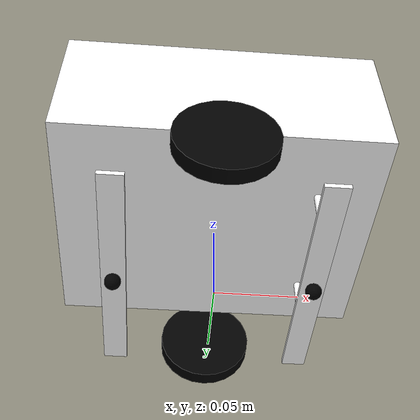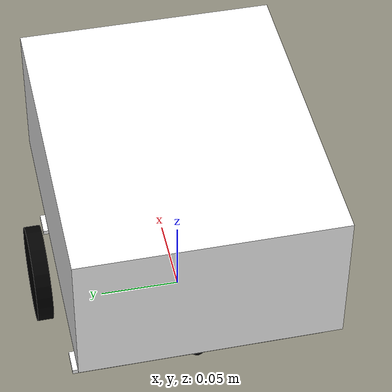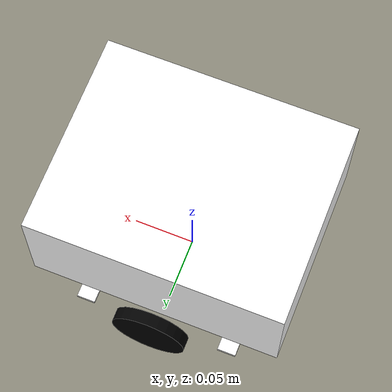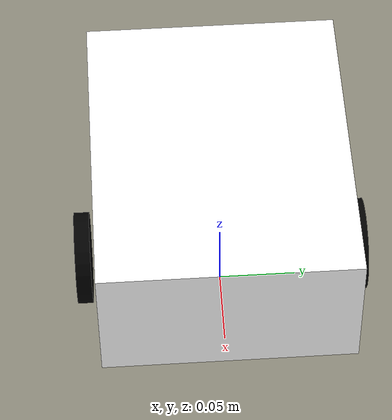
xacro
<?xml version="1.0"?>
<robot xmlns:xacro="http://www.ros.org/wiki/xacro"  name="robot">

    <xacro:include filename="inertial_macros.xacro"/>

    <material name="white">
        <color rgba="1 1 1 1" />
    </material>

    <material name="orange">
        <color rgba="1 0.3 0.1 1"/>
    </material>

    <material name="blue">
        <color rgba="0.2 0.2 1 1"/>
    </material>

    <material name="black">
        <color rgba="0 0 0 1"/>
    </material>

    <!-- base link -->

    <link name="base_link">

    </link>

    <!-- base footprint -->

    <joint name="base_footprint_joint" type="fixed">
        <parent link="base_link"/>
        <child link="base_footprint"/>
        <origin xyz="0 0 0" rpy="0 0 0"/>
    </joint>

    <link name="base_footprint">
    </link>

    <!-- chassis -->

    <joint name="chassis_joint" type="fixed">
        <parent link="base_link"/>
        <child link="chassis"/>
        <origin xyz="0 0 0" rpy="0 0 0"/>
    </joint>

    <link name="chassis">
        <visual>
        <origin xyz="0 0 0.095"/>
            <geometry>
                <box size="0.2 0.16 0.09"/>
            </geometry>
            <material name="white"/>
        </visual>
        <collision>
        <origin xyz="0.0 0.0 0.095"/>
            <geometry>
                <box size="0.2 0.16 0.09"/>
            </geometry>
            <material name="white"/>
        </collision>
        <xacro:inertial_box mass="0.7" x="0.2" y="0.16" z="0.09">
            <origin xyz="0 0 0.05" rpy="0 0 0"/>
        </xacro:inertial_box>
    </link>

    <!-- left wheel -->

    <joint name="left_wheel_joint" type="continuous">
        <parent link="base_link"/>
        <child link="left_wheel"/>
        <origin xyz="0 0.09 0.03" rpy="-${pi/2} 0 0"/>
        <axis xyz="0 0 1"/>
    </joint>

    <link name="left_wheel">
        <visual>
            <geometry>
                <cylinder radius="0.03" length="0.01"/>
            </geometry>
            <material name="black" />
        </visual>
        <collision>
            <geometry>
                <cylinder radius="0.03" length="0.01"/>
            </geometry>
            <material name="black" />
        </collision>
        <xacro:inertial_cylinder mass="0.2" length="0.01" radius="0.03">
            <origin xyz="0 0 0" rpy="0 0 0"/>
        </xacro:inertial_cylinder>
    </link>

    <!-- right wheel -->

    <joint name="right_wheel_joint" type="continuous">
        <parent link="base_link"/>
        <child link="right_wheel"/>
        <origin xyz="0 -0.09 0.03" rpy="${pi/2} 0 0"/>
        <axis xyz="0 0 -1"/>
    </joint>

    <link name="right_wheel">
        <visual>
            <geometry>
                <cylinder radius="0.03" length="0.01"/>
            </geometry>
            <material name="black" />
        </visual>
        <collision>
            <geometry>
                <cylinder radius="0.03" length="0.01"/>
            </geometry>
            <material name="black" />
        </collision>
        <xacro:inertial_cylinder mass="0.2" length="0.01" radius="0.03">
            <origin xyz="0 0 0" rpy="0 0 0"/>
        </xacro:inertial_cylinder>
    </link>

    <!-- front caster link -->

    <!-- front left screw -->
    <joint name="front_left_screw_joint" type="fixed">
        <parent link="base_link"/>
        <child link="front_left_screw"/>
        <origin xyz="0.06 0.04 0.0275" rpy="0 0 0"/>
    </joint>

    <link name="front_left_screw">
        <visual>
            <geometry>
                <cylinder radius="0.0025" length="0.035"/>
            </geometry>
            <material name="white"/>
        </visual>
        <collision>
            <geometry>
                <cylinder radius="0.0025" length="0.035"/>
            </geometry>
        </collision>
        <xacro:inertial_cylinder mass="0.05" length="0.035" radius="0.0025">
            <origin xyz="0 0 0" rpy="0 0 0"/>
        </xacro:inertial_cylinder>
    </link>

    <!-- front right screw -->
    <joint name="front_right_screw_joint" type="fixed">
        <parent link="base_link"/>
        <child link="front_right_screw"/>
        <origin xyz="0.06 -0.04 0.0275" rpy="0 0 0"/>
    </joint>

    <link name="front_right_screw">
        <visual>
            <geometry>
                <cylinder radius="0.0025" length="0.035"/>
            </geometry>
            <material name="white"/>
        </visual>
        <collision>
            <geometry>
                <cylinder radius="0.0025" length="0.035"/>
            </geometry>
        </collision>
        <xacro:inertial_cylinder mass="0.05" length="0.035" radius="0.0025">
            <origin xyz="0 0 0" rpy="0 0 0"/>
        </xacro:inertial_cylinder>
    </link>

    <!-- front caster link -->

    <joint name="front_caster_link_joint" type="fixed">
        <parent link="base_link"/>
        <child link="front_caster_link"/>
        <origin xyz="0.06 0 0.01"/>
    </joint>

    <link name="front_caster_link">
        <visual>
            <geometry>
                <box size="0.015 0.16 0.003"/>
            </geometry>
            <material name="white"/>
        </visual>
        <collision>
            <geometry>
                <box size="0.015 0.16 0.003"/>
            </geometry>
        </collision>
        <xacro:inertial_box mass="0.1" x="0.015" y="0.16" z="0.003">
            <origin xyz="0 0 0" rpy="0 0 0"/>
        </xacro:inertial_box>
    </link>

    <!-- front caster wheel -->
    <joint name="front_caster_joint" type="fixed">
        <parent link="chassis"/>
        <child link="front_caster_wheel"/>
        <origin xyz="0.06 0 0.005"/>
    </joint>

    <link name="front_caster_wheel">
        <visual>
            <geometry>
                <sphere radius="0.005"/>
            </geometry>
            <material name="black"/>
        </visual>
        <collision>
            <geometry>
                <sphere radius="0.005"/>
            </geometry>
        </collision>
        <xacro:inertial_sphere mass="0.01" radius="0.005">
            <origin xyz="0 0 0" rpy="0 0 0"/>
        </xacro:inertial_sphere>
    </link>

    <!-- rear caster link -->

    <!-- rear left screw -->
    <joint name="rear_left_screw_joint" type="fixed">
        <parent link="base_link"/>
        <child link="rear_left_screw"/>
        <origin xyz="-0.06 0.04 0.0275" rpy="0 0 0"/>
    </joint>

    <link name="rear_left_screw">
        <visual>
            <geometry>
                <cylinder radius="0.0025" length="0.035"/>
            </geometry>
            <material name="white"/>
        </visual>
        <collision>
            <geometry>
                <cylinder radius="0.0025" length="0.035"/>
            </geometry>
        </collision>
        <xacro:inertial_cylinder mass="0.05" length="0.035" radius="0.0025">
            <origin xyz="0 0 0" rpy="0 0 0"/>
        </xacro:inertial_cylinder>
    </link>

    <!-- rear right screw -->
    <joint name="rear_right_screw_joint" type="fixed">
        <parent link="base_link"/>
        <child link="rear_right_screw"/>
        <origin xyz="-0.06 -0.04 0.0275" rpy="0 0 0"/>
    </joint>

    <link name="rear_right_screw">
        <visual>
            <geometry>
                <cylinder radius="0.0025" length="0.035"/>
            </geometry>
            <material name="white"/>
        </visual>
        <collision>
            <geometry>
                <cylinder radius="0.0025" length="0.035"/>
            </geometry>
        </collision>
        <xacro:inertial_cylinder mass="0.05" length="0.035" radius="0.0025">
            <origin xyz="0 0 0" rpy="0 0 0"/>
        </xacro:inertial_cylinder>
    </link>

    <!-- rear caster link -->

    <joint name="rear_caster_link_joint" type="fixed">
        <parent link="base_link"/>
        <child link="rear_caster_link"/>
        <origin xyz="-0.06 0 0.01"/>
    </joint>

    <link name="rear_caster_link">
        <visual>
            <geometry>
                <box size="0.015 0.16 0.003"/>
            </geometry>
            <material name="white"/>
        </visual>
        <collision>
            <geometry>
                <box size="0.015 0.16 0.003"/>
            </geometry>
        </collision>
        <xacro:inertial_box mass="0.1" x="0.015" y="0.16" z="0.003">
            <origin xyz="0 0 0" rpy="0 0 0"/>
        </xacro:inertial_box>
    </link>

    <!-- rear caster wheel -->
    <joint name="rear_caster_joint" type="fixed">
        <parent link="chassis"/>
        <child link="rear_caster_wheel"/>
        <origin xyz="-0.06 0 0.005"/>
    </joint>

    <link name="rear_caster_wheel">
        <visual>
            <geometry>
                <sphere radius="0.005"/>
            </geometry>
            <material name="black"/>
        </visual>
        <collision>
            <geometry>
                <sphere radius="0.005"/>
            </geometry>
        </collision>
        <xacro:inertial_sphere mass="0.01" radius="0.005">
            <origin xyz="0 0 0" rpy="0 0 0"/>
        </xacro:inertial_sphere>
    </link>

    <!-- Gazebo color ref -->
    <gazebo reference="base_link">
        <material>
            Gazebo/White
        </material>
    </gazebo>

    <gazebo reference="left_wheel">
        <material>
            Gazebo/Black
        </material>
    </gazebo>

    <gazebo reference="right_wheel">
        <material>
            Gazebo/Black
        </material>
    </gazebo>

    <gazebo reference="front_caster_wheel">
        <material>
            Gazebo/Black
        </material>
        <mu1 value="0.001"/>
        <mu2 value="0.001"/>
    </gazebo>

    <gazebo reference="rear_caster_wheel">
        <material>
            Gazebo/Black
        </material>
        <mu1 value="0.001"/>
        <mu2 value="0.001"/>
    </gazebo>

</robot>
